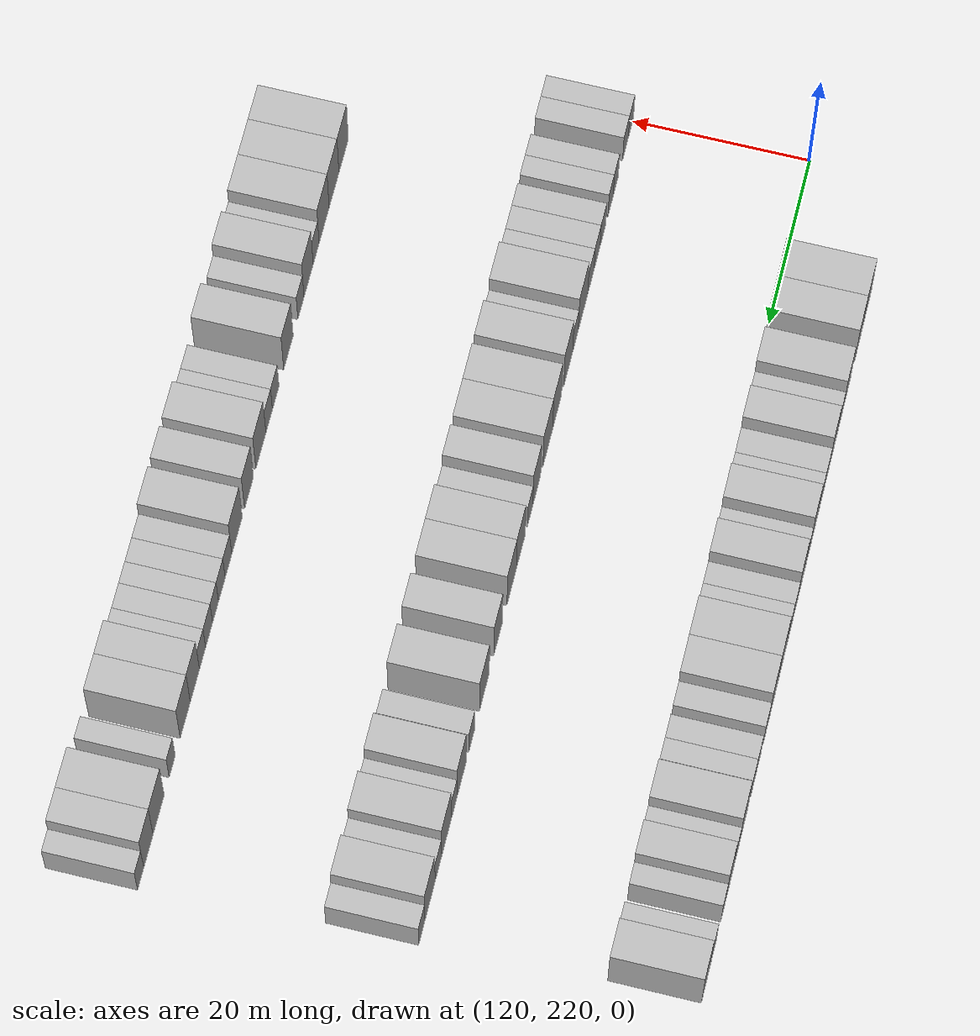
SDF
<sdf version="1.6">
 <world name="default">
  <model name="building_862">
   <static>1</static>
   <pose>115.0000 235.8751 0 0.000000 0.000000 0.000000</pose>
   <link name="link">
    <pose>0 0 4.50 0 0 0</pose>
    <collision name="collision"><geometry><box><size>10.0000 4.4538 9.0000</size></box></geometry></collision>
    <visual name="visual">
     <cast_shadows>0</cast_shadows>
     <geometry><box><size>10.0000 4.4538 9.0000</size></box></geometry>
     <material>
      <script>
       <uri>model://HANNAS_wall/materials/scripts</uri>
       <uri>model://HANNAS_wall/materials/textures</uri>
       <name>vrc/HANNAS_wall</name>
      </script>
     </material>
    </visual>
   </link>
  </model>
  <model name="building_863">
   <static>1</static>
   <pose>115.0000 240.1814 0 0.000000 0.000000 0.000000</pose>
   <link name="link">
    <pose>0 0 4.50 0 0 0</pose>
    <collision name="collision"><geometry><box><size>10.0000 4.1587 9.0000</size></box></geometry></collision>
    <visual name="visual">
     <cast_shadows>0</cast_shadows>
     <geometry><box><size>10.0000 4.1587 9.0000</size></box></geometry>
     <material>
      <script>
       <uri>model://HANNAS_wall/materials/scripts</uri>
       <uri>model://HANNAS_wall/materials/textures</uri>
       <name>vrc/HANNAS_wall</name>
      </script>
     </material>
    </visual>
   </link>
  </model>
  <model name="building_864">
   <static>1</static>
   <pose>115.0000 246.2962 0 0.000000 0.000000 0.000000</pose>
   <link name="link">
    <pose>0 0 4.50 0 0 0</pose>
    <collision name="collision"><geometry><box><size>10.0000 4.0710 9.0000</size></box></geometry></collision>
    <visual name="visual">
     <cast_shadows>0</cast_shadows>
     <geometry><box><size>10.0000 4.0710 9.0000</size></box></geometry>
     <material>
      <script>
       <uri>model://HANNAS_wall/materials/scripts</uri>
       <uri>model://HANNAS_wall/materials/textures</uri>
       <name>vrc/HANNAS_wall</name>
      </script>
     </material>
    </visual>
   </link>
  </model>
  <model name="building_865">
   <static>1</static>
   <pose>115.0000 249.7714 0 0.000000 0.000000 0.000000</pose>
   <link name="link">
    <pose>0 0 3.00 0 0 0</pose>
    <collision name="collision"><geometry><box><size>10.0000 2.8792 6.0000</size></box></geometry></collision>
    <visual name="visual">
     <cast_shadows>0</cast_shadows>
     <geometry><box><size>10.0000 2.8792 6.0000</size></box></geometry>
     <material>
      <script>
       <uri>model://HANNAS_wall/materials/scripts</uri>
       <uri>model://HANNAS_wall/materials/textures</uri>
       <name>vrc/HANNAS_wall</name>
      </script>
     </material>
    </visual>
   </link>
  </model>
  <model name="building_866">
   <static>1</static>
   <pose>115.0000 253.1033 0 0.000000 0.000000 0.000000</pose>
   <link name="link">
    <pose>0 0 4.50 0 0 0</pose>
    <collision name="collision"><geometry><box><size>10.0000 3.7846 9.0000</size></box></geometry></collision>
    <visual name="visual">
     <cast_shadows>0</cast_shadows>
     <geometry><box><size>10.0000 3.7846 9.0000</size></box></geometry>
     <material>
      <script>
       <uri>model://HANNAS_wall/materials/scripts</uri>
       <uri>model://HANNAS_wall/materials/textures</uri>
       <name>vrc/HANNAS_wall</name>
      </script>
     </material>
    </visual>
   </link>
  </model>
  <model name="building_867">
   <static>1</static>
   <pose>115.0000 256.4600 0 0.000000 0.000000 0.000000</pose>
   <link name="link">
    <pose>0 0 3.00 0 0 0</pose>
    <collision name="collision"><geometry><box><size>10.0000 2.9288 6.0000</size></box></geometry></collision>
    <visual name="visual">
     <cast_shadows>0</cast_shadows>
     <geometry><box><size>10.0000 2.9288 6.0000</size></box></geometry>
     <material>
      <script>
       <uri>model://HANNAS_wall/materials/scripts</uri>
       <uri>model://HANNAS_wall/materials/textures</uri>
       <name>vrc/HANNAS_wall</name>
      </script>
     </material>
    </visual>
   </link>
  </model>
  <model name="building_868">
   <static>1</static>
   <pose>115.0000 259.1666 0 0.000000 0.000000 0.000000</pose>
   <link name="link">
    <pose>0 0 3.00 0 0 0</pose>
    <collision name="collision"><geometry><box><size>10.0000 2.4843 6.0000</size></box></geometry></collision>
    <visual name="visual">
     <cast_shadows>0</cast_shadows>
     <geometry><box><size>10.0000 2.4843 6.0000</size></box></geometry>
     <material>
      <script>
       <uri>model://HANNAS_wall/materials/scripts</uri>
       <uri>model://HANNAS_wall/materials/textures</uri>
       <name>vrc/HANNAS_wall</name>
      </script>
     </material>
    </visual>
   </link>
  </model>
  <model name="building_869">
   <static>1</static>
   <pose>115.0000 262.3758 0 0.000000 0.000000 0.000000</pose>
   <link name="link">
    <pose>0 0 4.50 0 0 0</pose>
    <collision name="collision"><geometry><box><size>10.0000 3.9342 9.0000</size></box></geometry></collision>
    <visual name="visual">
     <cast_shadows>0</cast_shadows>
     <geometry><box><size>10.0000 3.9342 9.0000</size></box></geometry>
     <material>
      <script>
       <uri>model://HANNAS_wall/materials/scripts</uri>
       <uri>model://HANNAS_wall/materials/textures</uri>
       <name>vrc/HANNAS_wall</name>
      </script>
     </material>
    </visual>
   </link>
  </model>
  <model name="building_870">
   <static>1</static>
   <pose>115.0000 265.5719 0 0.000000 0.000000 0.000000</pose>
   <link name="link">
    <pose>0 0 3.00 0 0 0</pose>
    <collision name="collision"><geometry><box><size>10.0000 2.4580 6.0000</size></box></geometry></collision>
    <visual name="visual">
     <cast_shadows>0</cast_shadows>
     <geometry><box><size>10.0000 2.4580 6.0000</size></box></geometry>
     <material>
      <script>
       <uri>model://HANNAS_wall/materials/scripts</uri>
       <uri>model://HANNAS_wall/materials/textures</uri>
       <name>vrc/HANNAS_wall</name>
      </script>
     </material>
    </visual>
   </link>
  </model>
  <model name="building_871">
   <static>1</static>
   <pose>115.0000 268.7473 0 0.000000 0.000000 0.000000</pose>
   <link name="link">
    <pose>0 0 4.50 0 0 0</pose>
    <collision name="collision"><geometry><box><size>10.0000 3.8926 9.0000</size></box></geometry></collision>
    <visual name="visual">
     <cast_shadows>0</cast_shadows>
     <geometry><box><size>10.0000 3.8926 9.0000</size></box></geometry>
     <material>
      <script>
       <uri>model://HANNAS_wall/materials/scripts</uri>
       <uri>model://HANNAS_wall/materials/textures</uri>
       <name>vrc/HANNAS_wall</name>
      </script>
     </material>
    </visual>
   </link>
  </model>
  <model name="building_872">
   <static>1</static>
   <pose>115.0000 271.9599 0 0.000000 0.000000 0.000000</pose>
   <link name="link">
    <pose>0 0 3.00 0 0 0</pose>
    <collision name="collision"><geometry><box><size>10.0000 2.5327 6.0000</size></box></geometry></collision>
    <visual name="visual">
     <cast_shadows>0</cast_shadows>
     <geometry><box><size>10.0000 2.5327 6.0000</size></box></geometry>
     <material>
      <script>
       <uri>model://HANNAS_wall/materials/scripts</uri>
       <uri>model://HANNAS_wall/materials/textures</uri>
       <name>vrc/HANNAS_wall</name>
      </script>
     </material>
    </visual>
   </link>
  </model>
  <model name="building_873">
   <static>1</static>
   <pose>115.0000 274.4878 0 0.000000 0.000000 0.000000</pose>
   <link name="link">
    <pose>0 0 3.00 0 0 0</pose>
    <collision name="collision"><geometry><box><size>10.0000 2.5231 6.0000</size></box></geometry></collision>
    <visual name="visual">
     <cast_shadows>0</cast_shadows>
     <geometry><box><size>10.0000 2.5231 6.0000</size></box></geometry>
     <material>
      <script>
       <uri>model://HANNAS_wall/materials/scripts</uri>
       <uri>model://HANNAS_wall/materials/textures</uri>
       <name>vrc/HANNAS_wall</name>
      </script>
     </material>
    </visual>
   </link>
  </model>
  <model name="building_874">
   <static>1</static>
   <pose>115.0000 277.9775 0 0.000000 0.000000 0.000000</pose>
   <link name="link">
    <pose>0 0 4.50 0 0 0</pose>
    <collision name="collision"><geometry><box><size>10.0000 4.4563 9.0000</size></box></geometry></collision>
    <visual name="visual">
     <cast_shadows>0</cast_shadows>
     <geometry><box><size>10.0000 4.4563 9.0000</size></box></geometry>
     <material>
      <script>
       <uri>model://HANNAS_wall/materials/scripts</uri>
       <uri>model://HANNAS_wall/materials/textures</uri>
       <name>vrc/HANNAS_wall</name>
      </script>
     </material>
    </visual>
   </link>
  </model>
  <model name="building_875">
   <static>1</static>
   <pose>115.0000 282.3492 0 0.000000 0.000000 0.000000</pose>
   <link name="link">
    <pose>0 0 4.50 0 0 0</pose>
    <collision name="collision"><geometry><box><size>10.0000 4.2870 9.0000</size></box></geometry></collision>
    <visual name="visual">
     <cast_shadows>0</cast_shadows>
     <geometry><box><size>10.0000 4.2870 9.0000</size></box></geometry>
     <material>
      <script>
       <uri>model://HANNAS_wall/materials/scripts</uri>
       <uri>model://HANNAS_wall/materials/textures</uri>
       <name>vrc/HANNAS_wall</name>
      </script>
     </material>
    </visual>
   </link>
  </model>
  <model name="building_876">
   <static>1</static>
   <pose>115.0000 285.8791 0 0.000000 0.000000 0.000000</pose>
   <link name="link">
    <pose>0 0 3.00 0 0 0</pose>
    <collision name="collision"><geometry><box><size>10.0000 2.7729 6.0000</size></box></geometry></collision>
    <visual name="visual">
     <cast_shadows>0</cast_shadows>
     <geometry><box><size>10.0000 2.7729 6.0000</size></box></geometry>
     <material>
      <script>
       <uri>model://HANNAS_wall/materials/scripts</uri>
       <uri>model://HANNAS_wall/materials/textures</uri>
       <name>vrc/HANNAS_wall</name>
      </script>
     </material>
    </visual>
   </link>
  </model>
  <model name="building_877">
   <static>1</static>
   <pose>115.0000 289.5782 0 0.000000 0.000000 0.000000</pose>
   <link name="link">
    <pose>0 0 3.00 0 0 0</pose>
    <collision name="collision"><geometry><box><size>10.0000 2.6253 6.0000</size></box></geometry></collision>
    <visual name="visual">
     <cast_shadows>0</cast_shadows>
     <geometry><box><size>10.0000 2.6253 6.0000</size></box></geometry>
     <material>
      <script>
       <uri>model://HANNAS_wall/materials/scripts</uri>
       <uri>model://HANNAS_wall/materials/textures</uri>
       <name>vrc/HANNAS_wall</name>
      </script>
     </material>
    </visual>
   </link>
  </model>
  <model name="building_878">
   <static>1</static>
   <pose>115.0000 292.1133 0 0.000000 0.000000 0.000000</pose>
   <link name="link">
    <pose>0 0 3.00 0 0 0</pose>
    <collision name="collision"><geometry><box><size>10.0000 2.4450 6.0000</size></box></geometry></collision>
    <visual name="visual">
     <cast_shadows>0</cast_shadows>
     <geometry><box><size>10.0000 2.4450 6.0000</size></box></geometry>
     <material>
      <script>
       <uri>model://HANNAS_wall/materials/scripts</uri>
       <uri>model://HANNAS_wall/materials/textures</uri>
       <name>vrc/HANNAS_wall</name>
      </script>
     </material>
    </visual>
   </link>
  </model>
  <model name="building_879">
   <static>1</static>
   <pose>115.0000 296.4549 0 0.000000 0.000000 0.000000</pose>
   <link name="link">
    <pose>0 0 4.50 0 0 0</pose>
    <collision name="collision"><geometry><box><size>10.0000 4.2381 9.0000</size></box></geometry></collision>
    <visual name="visual">
     <cast_shadows>0</cast_shadows>
     <geometry><box><size>10.0000 4.2381 9.0000</size></box></geometry>
     <material>
      <script>
       <uri>model://HANNAS_wall/materials/scripts</uri>
       <uri>model://HANNAS_wall/materials/textures</uri>
       <name>vrc/HANNAS_wall</name>
      </script>
     </material>
    </visual>
   </link>
  </model>
  <model name="building_880">
   <static>1</static>
   <pose>115.0000 299.8351 0 0.000000 0.000000 0.000000</pose>
   <link name="link">
    <pose>0 0 3.00 0 0 0</pose>
    <collision name="collision"><geometry><box><size>10.0000 2.5222 6.0000</size></box></geometry></collision>
    <visual name="visual">
     <cast_shadows>0</cast_shadows>
     <geometry><box><size>10.0000 2.5222 6.0000</size></box></geometry>
     <material>
      <script>
       <uri>model://HANNAS_wall/materials/scripts</uri>
       <uri>model://HANNAS_wall/materials/textures</uri>
       <name>vrc/HANNAS_wall</name>
      </script>
     </material>
    </visual>
   </link>
  </model>
  <model name="building_881">
   <static>1</static>
   <pose>115.0000 302.9856 0 0.000000 0.000000 0.000000</pose>
   <link name="link">
    <pose>0 0 4.50 0 0 0</pose>
    <collision name="collision"><geometry><box><size>10.0000 3.7789 9.0000</size></box></geometry></collision>
    <visual name="visual">
     <cast_shadows>0</cast_shadows>
     <geometry><box><size>10.0000 3.7789 9.0000</size></box></geometry>
     <material>
      <script>
       <uri>model://HANNAS_wall/materials/scripts</uri>
       <uri>model://HANNAS_wall/materials/textures</uri>
       <name>vrc/HANNAS_wall</name>
      </script>
     </material>
    </visual>
   </link>
  </model>
  <model name="building_882">
   <static>1</static>
   <pose>115.0000 306.0848 0 0.000000 0.000000 0.000000</pose>
   <link name="link">
    <pose>0 0 3.00 0 0 0</pose>
    <collision name="collision"><geometry><box><size>10.0000 2.4195 6.0000</size></box></geometry></collision>
    <visual name="visual">
     <cast_shadows>0</cast_shadows>
     <geometry><box><size>10.0000 2.4195 6.0000</size></box></geometry>
     <material>
      <script>
       <uri>model://HANNAS_wall/materials/scripts</uri>
       <uri>model://HANNAS_wall/materials/textures</uri>
       <name>vrc/HANNAS_wall</name>
      </script>
     </material>
    </visual>
   </link>
  </model>
  <model name="building_883">
   <static>1</static>
   <pose>115.0000 310.6423 0 0.000000 0.000000 0.000000</pose>
   <link name="link">
    <pose>0 0 3.00 0 0 0</pose>
    <collision name="collision"><geometry><box><size>10.0000 2.6955 6.0000</size></box></geometry></collision>
    <visual name="visual">
     <cast_shadows>0</cast_shadows>
     <geometry><box><size>10.0000 2.6955 6.0000</size></box></geometry>
     <material>
      <script>
       <uri>model://HANNAS_wall/materials/scripts</uri>
       <uri>model://HANNAS_wall/materials/textures</uri>
       <name>vrc/HANNAS_wall</name>
      </script>
     </material>
    </visual>
   </link>
  </model>
  <model name="building_884">
   <static>1</static>
   <pose>115.0000 314.1331 0 0.000000 0.000000 0.000000</pose>
   <link name="link">
    <pose>0 0 4.50 0 0 0</pose>
    <collision name="collision"><geometry><box><size>10.0000 4.2861 9.0000</size></box></geometry></collision>
    <visual name="visual">
     <cast_shadows>0</cast_shadows>
     <geometry><box><size>10.0000 4.2861 9.0000</size></box></geometry>
     <material>
      <script>
       <uri>model://HANNAS_wall/materials/scripts</uri>
       <uri>model://HANNAS_wall/materials/textures</uri>
       <name>vrc/HANNAS_wall</name>
      </script>
     </material>
    </visual>
   </link>
  </model>
  <model name="building_1085">
   <static>1</static>
   <pose>145.0000 220.9157 0 0.000000 0.000000 0.000000</pose>
   <link name="link">
    <pose>0 0 3.00 0 0 0</pose>
    <collision name="collision"><geometry><box><size>10.0000 2.6002 6.0000</size></box></geometry></collision>
    <visual name="visual">
     <cast_shadows>0</cast_shadows>
     <geometry><box><size>10.0000 2.6002 6.0000</size></box></geometry>
     <material>
      <script>
       <uri>model://HANNAS_wall/materials/scripts</uri>
       <uri>model://HANNAS_wall/materials/textures</uri>
       <name>vrc/HANNAS_wall</name>
      </script>
     </material>
    </visual>
   </link>
  </model>
  <model name="building_1086">
   <static>1</static>
   <pose>145.0000 223.5681 0 0.000000 0.000000 0.000000</pose>
   <link name="link">
    <pose>0 0 3.00 0 0 0</pose>
    <collision name="collision"><geometry><box><size>10.0000 2.7048 6.0000</size></box></geometry></collision>
    <visual name="visual">
     <cast_shadows>0</cast_shadows>
     <geometry><box><size>10.0000 2.7048 6.0000</size></box></geometry>
     <material>
      <script>
       <uri>model://HANNAS_wall/materials/scripts</uri>
       <uri>model://HANNAS_wall/materials/textures</uri>
       <name>vrc/HANNAS_wall</name>
      </script>
     </material>
    </visual>
   </link>
  </model>
  <model name="building_1087">
   <static>1</static>
   <pose>145.0000 228.1984 0 0.000000 0.000000 0.000000</pose>
   <link name="link">
    <pose>0 0 3.00 0 0 0</pose>
    <collision name="collision"><geometry><box><size>10.0000 2.5559 6.0000</size></box></geometry></collision>
    <visual name="visual">
     <cast_shadows>0</cast_shadows>
     <geometry><box><size>10.0000 2.5559 6.0000</size></box></geometry>
     <material>
      <script>
       <uri>model://HANNAS_wall/materials/scripts</uri>
       <uri>model://HANNAS_wall/materials/textures</uri>
       <name>vrc/HANNAS_wall</name>
      </script>
     </material>
    </visual>
   </link>
  </model>
  <model name="building_1088">
   <static>1</static>
   <pose>145.0000 230.7215 0 0.000000 0.000000 0.000000</pose>
   <link name="link">
    <pose>0 0 3.00 0 0 0</pose>
    <collision name="collision"><geometry><box><size>10.0000 2.4903 6.0000</size></box></geometry></collision>
    <visual name="visual">
     <cast_shadows>0</cast_shadows>
     <geometry><box><size>10.0000 2.4903 6.0000</size></box></geometry>
     <material>
      <script>
       <uri>model://HANNAS_wall/materials/scripts</uri>
       <uri>model://HANNAS_wall/materials/textures</uri>
       <name>vrc/HANNAS_wall</name>
      </script>
     </material>
    </visual>
   </link>
  </model>
  <model name="building_1089">
   <static>1</static>
   <pose>145.0000 234.3132 0 0.000000 0.000000 0.000000</pose>
   <link name="link">
    <pose>0 0 3.00 0 0 0</pose>
    <collision name="collision"><geometry><box><size>10.0000 2.6929 6.0000</size></box></geometry></collision>
    <visual name="visual">
     <cast_shadows>0</cast_shadows>
     <geometry><box><size>10.0000 2.6929 6.0000</size></box></geometry>
     <material>
      <script>
       <uri>model://HANNAS_wall/materials/scripts</uri>
       <uri>model://HANNAS_wall/materials/textures</uri>
       <name>vrc/HANNAS_wall</name>
      </script>
     </material>
    </visual>
   </link>
  </model>
  <model name="building_1090">
   <static>1</static>
   <pose>145.0000 237.0850 0 0.000000 0.000000 0.000000</pose>
   <link name="link">
    <pose>0 0 3.00 0 0 0</pose>
    <collision name="collision"><geometry><box><size>10.0000 2.8508 6.0000</size></box></geometry></collision>
    <visual name="visual">
     <cast_shadows>0</cast_shadows>
     <geometry><box><size>10.0000 2.8508 6.0000</size></box></geometry>
     <material>
      <script>
       <uri>model://HANNAS_wall/materials/scripts</uri>
       <uri>model://HANNAS_wall/materials/textures</uri>
       <name>vrc/HANNAS_wall</name>
      </script>
     </material>
    </visual>
   </link>
  </model>
  <model name="building_1091">
   <static>1</static>
   <pose>145.0000 239.9991 0 0.000000 0.000000 0.000000</pose>
   <link name="link">
    <pose>0 0 3.00 0 0 0</pose>
    <collision name="collision"><geometry><box><size>10.0000 2.9773 6.0000</size></box></geometry></collision>
    <visual name="visual">
     <cast_shadows>0</cast_shadows>
     <geometry><box><size>10.0000 2.9773 6.0000</size></box></geometry>
     <material>
      <script>
       <uri>model://HANNAS_wall/materials/scripts</uri>
       <uri>model://HANNAS_wall/materials/textures</uri>
       <name>vrc/HANNAS_wall</name>
      </script>
     </material>
    </visual>
   </link>
  </model>
  <model name="building_1092">
   <static>1</static>
   <pose>145.0000 243.7356 0 0.000000 0.000000 0.000000</pose>
   <link name="link">
    <pose>0 0 4.50 0 0 0</pose>
    <collision name="collision"><geometry><box><size>10.0000 4.4958 9.0000</size></box></geometry></collision>
    <visual name="visual">
     <cast_shadows>0</cast_shadows>
     <geometry><box><size>10.0000 4.4958 9.0000</size></box></geometry>
     <material>
      <script>
       <uri>model://HANNAS_wall/materials/scripts</uri>
       <uri>model://HANNAS_wall/materials/textures</uri>
       <name>vrc/HANNAS_wall</name>
      </script>
     </material>
    </visual>
   </link>
  </model>
  <model name="building_1093">
   <static>1</static>
   <pose>145.0000 247.2667 0 0.000000 0.000000 0.000000</pose>
   <link name="link">
    <pose>0 0 3.00 0 0 0</pose>
    <collision name="collision"><geometry><box><size>10.0000 2.5664 6.0000</size></box></geometry></collision>
    <visual name="visual">
     <cast_shadows>0</cast_shadows>
     <geometry><box><size>10.0000 2.5664 6.0000</size></box></geometry>
     <material>
      <script>
       <uri>model://HANNAS_wall/materials/scripts</uri>
       <uri>model://HANNAS_wall/materials/textures</uri>
       <name>vrc/HANNAS_wall</name>
      </script>
     </material>
    </visual>
   </link>
  </model>
  <model name="building_1094">
   <static>1</static>
   <pose>145.0000 250.6138 0 0.000000 0.000000 0.000000</pose>
   <link name="link">
    <pose>0 0 4.50 0 0 0</pose>
    <collision name="collision"><geometry><box><size>10.0000 4.1277 9.0000</size></box></geometry></collision>
    <visual name="visual">
     <cast_shadows>0</cast_shadows>
     <geometry><box><size>10.0000 4.1277 9.0000</size></box></geometry>
     <material>
      <script>
       <uri>model://HANNAS_wall/materials/scripts</uri>
       <uri>model://HANNAS_wall/materials/textures</uri>
       <name>vrc/HANNAS_wall</name>
      </script>
     </material>
    </visual>
   </link>
  </model>
  <model name="building_1095">
   <static>1</static>
   <pose>145.0000 255.7609 0 0.000000 0.000000 0.000000</pose>
   <link name="link">
    <pose>0 0 4.50 0 0 0</pose>
    <collision name="collision"><geometry><box><size>10.0000 4.1666 9.0000</size></box></geometry></collision>
    <visual name="visual">
     <cast_shadows>0</cast_shadows>
     <geometry><box><size>10.0000 4.1666 9.0000</size></box></geometry>
     <material>
      <script>
       <uri>model://HANNAS_wall/materials/scripts</uri>
       <uri>model://HANNAS_wall/materials/textures</uri>
       <name>vrc/HANNAS_wall</name>
      </script>
     </material>
    </visual>
   </link>
  </model>
  <model name="building_1096">
   <static>1</static>
   <pose>145.0000 260.0706 0 0.000000 0.000000 0.000000</pose>
   <link name="link">
    <pose>0 0 4.50 0 0 0</pose>
    <collision name="collision"><geometry><box><size>10.0000 4.4527 9.0000</size></box></geometry></collision>
    <visual name="visual">
     <cast_shadows>0</cast_shadows>
     <geometry><box><size>10.0000 4.4527 9.0000</size></box></geometry>
     <material>
      <script>
       <uri>model://HANNAS_wall/materials/scripts</uri>
       <uri>model://HANNAS_wall/materials/textures</uri>
       <name>vrc/HANNAS_wall</name>
      </script>
     </material>
    </visual>
   </link>
  </model>
  <model name="building_1097">
   <static>1</static>
   <pose>145.0000 265.1052 0 0.000000 0.000000 0.000000</pose>
   <link name="link">
    <pose>0 0 4.50 0 0 0</pose>
    <collision name="collision"><geometry><box><size>10.0000 3.6166 9.0000</size></box></geometry></collision>
    <visual name="visual">
     <cast_shadows>0</cast_shadows>
     <geometry><box><size>10.0000 3.6166 9.0000</size></box></geometry>
     <material>
      <script>
       <uri>model://HANNAS_wall/materials/scripts</uri>
       <uri>model://HANNAS_wall/materials/textures</uri>
       <name>vrc/HANNAS_wall</name>
      </script>
     </material>
    </visual>
   </link>
  </model>
  <model name="building_1098">
   <static>1</static>
   <pose>145.0000 268.1283 0 0.000000 0.000000 0.000000</pose>
   <link name="link">
    <pose>0 0 3.00 0 0 0</pose>
    <collision name="collision"><geometry><box><size>10.0000 2.4296 6.0000</size></box></geometry></collision>
    <visual name="visual">
     <cast_shadows>0</cast_shadows>
     <geometry><box><size>10.0000 2.4296 6.0000</size></box></geometry>
     <material>
      <script>
       <uri>model://HANNAS_wall/materials/scripts</uri>
       <uri>model://HANNAS_wall/materials/textures</uri>
       <name>vrc/HANNAS_wall</name>
      </script>
     </material>
    </visual>
   </link>
  </model>
  <model name="building_1099">
   <static>1</static>
   <pose>145.0000 272.3154 0 0.000000 0.000000 0.000000</pose>
   <link name="link">
    <pose>0 0 4.50 0 0 0</pose>
    <collision name="collision"><geometry><box><size>10.0000 3.9445 9.0000</size></box></geometry></collision>
    <visual name="visual">
     <cast_shadows>0</cast_shadows>
     <geometry><box><size>10.0000 3.9445 9.0000</size></box></geometry>
     <material>
      <script>
       <uri>model://HANNAS_wall/materials/scripts</uri>
       <uri>model://HANNAS_wall/materials/textures</uri>
       <name>vrc/HANNAS_wall</name>
      </script>
     </material>
    </visual>
   </link>
  </model>
  <model name="building_1100">
   <static>1</static>
   <pose>145.0000 276.4461 0 0.000000 0.000000 0.000000</pose>
   <link name="link">
    <pose>0 0 4.50 0 0 0</pose>
    <collision name="collision"><geometry><box><size>10.0000 4.3168 9.0000</size></box></geometry></collision>
    <visual name="visual">
     <cast_shadows>0</cast_shadows>
     <geometry><box><size>10.0000 4.3168 9.0000</size></box></geometry>
     <material>
      <script>
       <uri>model://HANNAS_wall/materials/scripts</uri>
       <uri>model://HANNAS_wall/materials/textures</uri>
       <name>vrc/HANNAS_wall</name>
      </script>
     </material>
    </visual>
   </link>
  </model>
  <model name="building_1101">
   <static>1</static>
   <pose>145.0000 282.5282 0 0.000000 0.000000 0.000000</pose>
   <link name="link">
    <pose>0 0 4.50 0 0 0</pose>
    <collision name="collision"><geometry><box><size>10.0000 3.8476 9.0000</size></box></geometry></collision>
    <visual name="visual">
     <cast_shadows>0</cast_shadows>
     <geometry><box><size>10.0000 3.8476 9.0000</size></box></geometry>
     <material>
      <script>
       <uri>model://HANNAS_wall/materials/scripts</uri>
       <uri>model://HANNAS_wall/materials/textures</uri>
       <name>vrc/HANNAS_wall</name>
      </script>
     </material>
    </visual>
   </link>
  </model>
  <model name="building_1102">
   <static>1</static>
   <pose>145.0000 288.6467 0 0.000000 0.000000 0.000000</pose>
   <link name="link">
    <pose>0 0 4.50 0 0 0</pose>
    <collision name="collision"><geometry><box><size>10.0000 4.3894 9.0000</size></box></geometry></collision>
    <visual name="visual">
     <cast_shadows>0</cast_shadows>
     <geometry><box><size>10.0000 4.3894 9.0000</size></box></geometry>
     <material>
      <script>
       <uri>model://HANNAS_wall/materials/scripts</uri>
       <uri>model://HANNAS_wall/materials/textures</uri>
       <name>vrc/HANNAS_wall</name>
      </script>
     </material>
    </visual>
   </link>
  </model>
  <model name="building_1103">
   <static>1</static>
   <pose>145.0000 294.2118 0 0.000000 0.000000 0.000000</pose>
   <link name="link">
    <pose>0 0 3.00 0 0 0</pose>
    <collision name="collision"><geometry><box><size>10.0000 2.7407 6.0000</size></box></geometry></collision>
    <visual name="visual">
     <cast_shadows>0</cast_shadows>
     <geometry><box><size>10.0000 2.7407 6.0000</size></box></geometry>
     <material>
      <script>
       <uri>model://HANNAS_wall/materials/scripts</uri>
       <uri>model://HANNAS_wall/materials/textures</uri>
       <name>vrc/HANNAS_wall</name>
      </script>
     </material>
    </visual>
   </link>
  </model>
  <model name="building_1104">
   <static>1</static>
   <pose>145.0000 298.6215 0 0.000000 0.000000 0.000000</pose>
   <link name="link">
    <pose>0 0 4.50 0 0 0</pose>
    <collision name="collision"><geometry><box><size>10.0000 4.0788 9.0000</size></box></geometry></collision>
    <visual name="visual">
     <cast_shadows>0</cast_shadows>
     <geometry><box><size>10.0000 4.0788 9.0000</size></box></geometry>
     <material>
      <script>
       <uri>model://HANNAS_wall/materials/scripts</uri>
       <uri>model://HANNAS_wall/materials/textures</uri>
       <name>vrc/HANNAS_wall</name>
      </script>
     </material>
    </visual>
   </link>
  </model>
  <model name="building_1105">
   <static>1</static>
   <pose>145.0000 301.8920 0 0.000000 0.000000 0.000000</pose>
   <link name="link">
    <pose>0 0 3.00 0 0 0</pose>
    <collision name="collision"><geometry><box><size>10.0000 2.4623 6.0000</size></box></geometry></collision>
    <visual name="visual">
     <cast_shadows>0</cast_shadows>
     <geometry><box><size>10.0000 2.4623 6.0000</size></box></geometry>
     <material>
      <script>
       <uri>model://HANNAS_wall/materials/scripts</uri>
       <uri>model://HANNAS_wall/materials/textures</uri>
       <name>vrc/HANNAS_wall</name>
      </script>
     </material>
    </visual>
   </link>
  </model>
  <model name="building_1106">
   <static>1</static>
   <pose>145.0000 305.2558 0 0.000000 0.000000 0.000000</pose>
   <link name="link">
    <pose>0 0 4.50 0 0 0</pose>
    <collision name="collision"><geometry><box><size>10.0000 4.2651 9.0000</size></box></geometry></collision>
    <visual name="visual">
     <cast_shadows>0</cast_shadows>
     <geometry><box><size>10.0000 4.2651 9.0000</size></box></geometry>
     <material>
      <script>
       <uri>model://HANNAS_wall/materials/scripts</uri>
       <uri>model://HANNAS_wall/materials/textures</uri>
       <name>vrc/HANNAS_wall</name>
      </script>
     </material>
    </visual>
   </link>
  </model>
  <model name="building_1107">
   <static>1</static>
   <pose>145.0000 308.8092 0 0.000000 0.000000 0.000000</pose>
   <link name="link">
    <pose>0 0 3.00 0 0 0</pose>
    <collision name="collision"><geometry><box><size>10.0000 2.8418 6.0000</size></box></geometry></collision>
    <visual name="visual">
     <cast_shadows>0</cast_shadows>
     <geometry><box><size>10.0000 2.8418 6.0000</size></box></geometry>
     <material>
      <script>
       <uri>model://HANNAS_wall/materials/scripts</uri>
       <uri>model://HANNAS_wall/materials/textures</uri>
       <name>vrc/HANNAS_wall</name>
      </script>
     </material>
    </visual>
   </link>
  </model>
  <model name="building_1108">
   <static>1</static>
   <pose>145.0000 312.4275 0 0.000000 0.000000 0.000000</pose>
   <link name="link">
    <pose>0 0 4.50 0 0 0</pose>
    <collision name="collision"><geometry><box><size>10.0000 4.3948 9.0000</size></box></geometry></collision>
    <visual name="visual">
     <cast_shadows>0</cast_shadows>
     <geometry><box><size>10.0000 4.3948 9.0000</size></box></geometry>
     <material>
      <script>
       <uri>model://HANNAS_wall/materials/scripts</uri>
       <uri>model://HANNAS_wall/materials/textures</uri>
       <name>vrc/HANNAS_wall</name>
      </script>
     </material>
    </visual>
   </link>
  </model>
  <model name="building_1109">
   <static>1</static>
   <pose>145.0000 315.9634 0 0.000000 0.000000 0.000000</pose>
   <link name="link">
    <pose>0 0 3.00 0 0 0</pose>
    <collision name="collision"><geometry><box><size>10.0000 2.6769 6.0000</size></box></geometry></collision>
    <visual name="visual">
     <cast_shadows>0</cast_shadows>
     <geometry><box><size>10.0000 2.6769 6.0000</size></box></geometry>
     <material>
      <script>
       <uri>model://HANNAS_wall/materials/scripts</uri>
       <uri>model://HANNAS_wall/materials/textures</uri>
       <name>vrc/HANNAS_wall</name>
      </script>
     </material>
    </visual>
   </link>
  </model>
  <model name="building_1302">
   <static>1</static>
   <pose>175.0000 231.8185 0 0.000000 0.000000 0.000000</pose>
   <link name="link">
    <pose>0 0 4.50 0 0 0</pose>
    <collision name="collision"><geometry><box><size>10.0000 4.2025 9.0000</size></box></geometry></collision>
    <visual name="visual">
     <cast_shadows>0</cast_shadows>
     <geometry><box><size>10.0000 4.2025 9.0000</size></box></geometry>
     <material>
      <script>
       <uri>model://HANNAS_wall/materials/scripts</uri>
       <uri>model://HANNAS_wall/materials/textures</uri>
       <name>vrc/HANNAS_wall</name>
      </script>
     </material>
    </visual>
   </link>
  </model>
  <model name="building_1303">
   <static>1</static>
   <pose>175.0000 236.0840 0 0.000000 0.000000 0.000000</pose>
   <link name="link">
    <pose>0 0 4.50 0 0 0</pose>
    <collision name="collision"><geometry><box><size>10.0000 4.3284 9.0000</size></box></geometry></collision>
    <visual name="visual">
     <cast_shadows>0</cast_shadows>
     <geometry><box><size>10.0000 4.3284 9.0000</size></box></geometry>
     <material>
      <script>
       <uri>model://HANNAS_wall/materials/scripts</uri>
       <uri>model://HANNAS_wall/materials/textures</uri>
       <name>vrc/HANNAS_wall</name>
      </script>
     </material>
    </visual>
   </link>
  </model>
  <model name="building_1304">
   <static>1</static>
   <pose>175.0000 240.4550 0 0.000000 0.000000 0.000000</pose>
   <link name="link">
    <pose>0 0 4.50 0 0 0</pose>
    <collision name="collision"><geometry><box><size>10.0000 4.4137 9.0000</size></box></geometry></collision>
    <visual name="visual">
     <cast_shadows>0</cast_shadows>
     <geometry><box><size>10.0000 4.4137 9.0000</size></box></geometry>
     <material>
      <script>
       <uri>model://HANNAS_wall/materials/scripts</uri>
       <uri>model://HANNAS_wall/materials/textures</uri>
       <name>vrc/HANNAS_wall</name>
      </script>
     </material>
    </visual>
   </link>
  </model>
  <model name="building_1305">
   <static>1</static>
   <pose>175.0000 243.9558 0 0.000000 0.000000 0.000000</pose>
   <link name="link">
    <pose>0 0 3.00 0 0 0</pose>
    <collision name="collision"><geometry><box><size>10.0000 2.5880 6.0000</size></box></geometry></collision>
    <visual name="visual">
     <cast_shadows>0</cast_shadows>
     <geometry><box><size>10.0000 2.5880 6.0000</size></box></geometry>
     <material>
      <script>
       <uri>model://HANNAS_wall/materials/scripts</uri>
       <uri>model://HANNAS_wall/materials/textures</uri>
       <name>vrc/HANNAS_wall</name>
      </script>
     </material>
    </visual>
   </link>
  </model>
  <model name="building_1306">
   <static>1</static>
   <pose>175.0000 247.2488 0 0.000000 0.000000 0.000000</pose>
   <link name="link">
    <pose>0 0 4.50 0 0 0</pose>
    <collision name="collision"><geometry><box><size>10.0000 3.9979 9.0000</size></box></geometry></collision>
    <visual name="visual">
     <cast_shadows>0</cast_shadows>
     <geometry><box><size>10.0000 3.9979 9.0000</size></box></geometry>
     <material>
      <script>
       <uri>model://HANNAS_wall/materials/scripts</uri>
       <uri>model://HANNAS_wall/materials/textures</uri>
       <name>vrc/HANNAS_wall</name>
      </script>
     </material>
    </visual>
   </link>
  </model>
  <model name="building_1307">
   <static>1</static>
   <pose>175.0000 250.5850 0 0.000000 0.000000 0.000000</pose>
   <link name="link">
    <pose>0 0 3.00 0 0 0</pose>
    <collision name="collision"><geometry><box><size>10.0000 2.6745 6.0000</size></box></geometry></collision>
    <visual name="visual">
     <cast_shadows>0</cast_shadows>
     <geometry><box><size>10.0000 2.6745 6.0000</size></box></geometry>
     <material>
      <script>
       <uri>model://HANNAS_wall/materials/scripts</uri>
       <uri>model://HANNAS_wall/materials/textures</uri>
       <name>vrc/HANNAS_wall</name>
      </script>
     </material>
    </visual>
   </link>
  </model>
  <model name="building_1308">
   <static>1</static>
   <pose>175.0000 255.9689 0 0.000000 0.000000 0.000000</pose>
   <link name="link">
    <pose>0 0 4.50 0 0 0</pose>
    <collision name="collision"><geometry><box><size>10.0000 4.0932 9.0000</size></box></geometry></collision>
    <visual name="visual">
     <cast_shadows>0</cast_shadows>
     <geometry><box><size>10.0000 4.0932 9.0000</size></box></geometry>
     <material>
      <script>
       <uri>model://HANNAS_wall/materials/scripts</uri>
       <uri>model://HANNAS_wall/materials/textures</uri>
       <name>vrc/HANNAS_wall</name>
      </script>
     </material>
    </visual>
   </link>
  </model>
  <model name="building_1309">
   <static>1</static>
   <pose>175.0000 261.4339 0 0.000000 0.000000 0.000000</pose>
   <link name="link">
    <pose>0 0 3.00 0 0 0</pose>
    <collision name="collision"><geometry><box><size>10.0000 2.8369 6.0000</size></box></geometry></collision>
    <visual name="visual">
     <cast_shadows>0</cast_shadows>
     <geometry><box><size>10.0000 2.8369 6.0000</size></box></geometry>
     <material>
      <script>
       <uri>model://HANNAS_wall/materials/scripts</uri>
       <uri>model://HANNAS_wall/materials/textures</uri>
       <name>vrc/HANNAS_wall</name>
      </script>
     </material>
    </visual>
   </link>
  </model>
  <model name="building_1310">
   <static>1</static>
   <pose>175.0000 264.2434 0 0.000000 0.000000 0.000000</pose>
   <link name="link">
    <pose>0 0 3.00 0 0 0</pose>
    <collision name="collision"><geometry><box><size>10.0000 2.7820 6.0000</size></box></geometry></collision>
    <visual name="visual">
     <cast_shadows>0</cast_shadows>
     <geometry><box><size>10.0000 2.7820 6.0000</size></box></geometry>
     <material>
      <script>
       <uri>model://HANNAS_wall/materials/scripts</uri>
       <uri>model://HANNAS_wall/materials/textures</uri>
       <name>vrc/HANNAS_wall</name>
      </script>
     </material>
    </visual>
   </link>
  </model>
  <model name="building_1311">
   <static>1</static>
   <pose>175.0000 267.7769 0 0.000000 0.000000 0.000000</pose>
   <link name="link">
    <pose>0 0 4.50 0 0 0</pose>
    <collision name="collision"><geometry><box><size>10.0000 4.2851 9.0000</size></box></geometry></collision>
    <visual name="visual">
     <cast_shadows>0</cast_shadows>
     <geometry><box><size>10.0000 4.2851 9.0000</size></box></geometry>
     <material>
      <script>
       <uri>model://HANNAS_wall/materials/scripts</uri>
       <uri>model://HANNAS_wall/materials/textures</uri>
       <name>vrc/HANNAS_wall</name>
      </script>
     </material>
    </visual>
   </link>
  </model>
  <model name="building_1312">
   <static>1</static>
   <pose>175.0000 272.7875 0 0.000000 0.000000 0.000000</pose>
   <link name="link">
    <pose>0 0 4.50 0 0 0</pose>
    <collision name="collision"><geometry><box><size>10.0000 3.7359 9.0000</size></box></geometry></collision>
    <visual name="visual">
     <cast_shadows>0</cast_shadows>
     <geometry><box><size>10.0000 3.7359 9.0000</size></box></geometry>
     <material>
      <script>
       <uri>model://HANNAS_wall/materials/scripts</uri>
       <uri>model://HANNAS_wall/materials/textures</uri>
       <name>vrc/HANNAS_wall</name>
      </script>
     </material>
    </visual>
   </link>
  </model>
  <model name="building_1313">
   <static>1</static>
   <pose>175.0000 277.8537 0 0.000000 0.000000 0.000000</pose>
   <link name="link">
    <pose>0 0 4.50 0 0 0</pose>
    <collision name="collision"><geometry><box><size>10.0000 4.3966 9.0000</size></box></geometry></collision>
    <visual name="visual">
     <cast_shadows>0</cast_shadows>
     <geometry><box><size>10.0000 4.3966 9.0000</size></box></geometry>
     <material>
      <script>
       <uri>model://HANNAS_wall/materials/scripts</uri>
       <uri>model://HANNAS_wall/materials/textures</uri>
       <name>vrc/HANNAS_wall</name>
      </script>
     </material>
    </visual>
   </link>
  </model>
  <model name="building_1314">
   <static>1</static>
   <pose>175.0000 281.4303 0 0.000000 0.000000 0.000000</pose>
   <link name="link">
    <pose>0 0 3.00 0 0 0</pose>
    <collision name="collision"><geometry><box><size>10.0000 2.7565 6.0000</size></box></geometry></collision>
    <visual name="visual">
     <cast_shadows>0</cast_shadows>
     <geometry><box><size>10.0000 2.7565 6.0000</size></box></geometry>
     <material>
      <script>
       <uri>model://HANNAS_wall/materials/scripts</uri>
       <uri>model://HANNAS_wall/materials/textures</uri>
       <name>vrc/HANNAS_wall</name>
      </script>
     </material>
    </visual>
   </link>
  </model>
  <model name="building_1315">
   <static>1</static>
   <pose>175.0000 284.1954 0 0.000000 0.000000 0.000000</pose>
   <link name="link">
    <pose>0 0 3.00 0 0 0</pose>
    <collision name="collision"><geometry><box><size>10.0000 2.7737 6.0000</size></box></geometry></collision>
    <visual name="visual">
     <cast_shadows>0</cast_shadows>
     <geometry><box><size>10.0000 2.7737 6.0000</size></box></geometry>
     <material>
      <script>
       <uri>model://HANNAS_wall/materials/scripts</uri>
       <uri>model://HANNAS_wall/materials/textures</uri>
       <name>vrc/HANNAS_wall</name>
      </script>
     </material>
    </visual>
   </link>
  </model>
  <model name="building_1316">
   <static>1</static>
   <pose>175.0000 286.8257 0 0.000000 0.000000 0.000000</pose>
   <link name="link">
    <pose>0 0 3.00 0 0 0</pose>
    <collision name="collision"><geometry><box><size>10.0000 2.4871 6.0000</size></box></geometry></collision>
    <visual name="visual">
     <cast_shadows>0</cast_shadows>
     <geometry><box><size>10.0000 2.4871 6.0000</size></box></geometry>
     <material>
      <script>
       <uri>model://HANNAS_wall/materials/scripts</uri>
       <uri>model://HANNAS_wall/materials/textures</uri>
       <name>vrc/HANNAS_wall</name>
      </script>
     </material>
    </visual>
   </link>
  </model>
  <model name="building_1317">
   <static>1</static>
   <pose>175.0000 289.5062 0 0.000000 0.000000 0.000000</pose>
   <link name="link">
    <pose>0 0 3.00 0 0 0</pose>
    <collision name="collision"><geometry><box><size>10.0000 2.8740 6.0000</size></box></geometry></collision>
    <visual name="visual">
     <cast_shadows>0</cast_shadows>
     <geometry><box><size>10.0000 2.8740 6.0000</size></box></geometry>
     <material>
      <script>
       <uri>model://HANNAS_wall/materials/scripts</uri>
       <uri>model://HANNAS_wall/materials/textures</uri>
       <name>vrc/HANNAS_wall</name>
      </script>
     </material>
    </visual>
   </link>
  </model>
  <model name="building_1318">
   <static>1</static>
   <pose>175.0000 292.2106 0 0.000000 0.000000 0.000000</pose>
   <link name="link">
    <pose>0 0 3.00 0 0 0</pose>
    <collision name="collision"><geometry><box><size>10.0000 2.5349 6.0000</size></box></geometry></collision>
    <visual name="visual">
     <cast_shadows>0</cast_shadows>
     <geometry><box><size>10.0000 2.5349 6.0000</size></box></geometry>
     <material>
      <script>
       <uri>model://HANNAS_wall/materials/scripts</uri>
       <uri>model://HANNAS_wall/materials/textures</uri>
       <name>vrc/HANNAS_wall</name>
      </script>
     </material>
    </visual>
   </link>
  </model>
  <model name="building_1319">
   <static>1</static>
   <pose>175.0000 295.3677 0 0.000000 0.000000 0.000000</pose>
   <link name="link">
    <pose>0 0 4.50 0 0 0</pose>
    <collision name="collision"><geometry><box><size>10.0000 3.7792 9.0000</size></box></geometry></collision>
    <visual name="visual">
     <cast_shadows>0</cast_shadows>
     <geometry><box><size>10.0000 3.7792 9.0000</size></box></geometry>
     <material>
      <script>
       <uri>model://HANNAS_wall/materials/scripts</uri>
       <uri>model://HANNAS_wall/materials/textures</uri>
       <name>vrc/HANNAS_wall</name>
      </script>
     </material>
    </visual>
   </link>
  </model>
  <model name="building_1320">
   <static>1</static>
   <pose>175.0000 299.3153 0 0.000000 0.000000 0.000000</pose>
   <link name="link">
    <pose>0 0 4.50 0 0 0</pose>
    <collision name="collision"><geometry><box><size>10.0000 4.1161 9.0000</size></box></geometry></collision>
    <visual name="visual">
     <cast_shadows>0</cast_shadows>
     <geometry><box><size>10.0000 4.1161 9.0000</size></box></geometry>
     <material>
      <script>
       <uri>model://HANNAS_wall/materials/scripts</uri>
       <uri>model://HANNAS_wall/materials/textures</uri>
       <name>vrc/HANNAS_wall</name>
      </script>
     </material>
    </visual>
   </link>
  </model>
  <model name="building_1321">
   <static>1</static>
   <pose>175.0000 304.6147 0 0.000000 0.000000 0.000000</pose>
   <link name="link">
    <pose>0 0 3.00 0 0 0</pose>
    <collision name="collision"><geometry><box><size>10.0000 2.4827 6.0000</size></box></geometry></collision>
    <visual name="visual">
     <cast_shadows>0</cast_shadows>
     <geometry><box><size>10.0000 2.4827 6.0000</size></box></geometry>
     <material>
      <script>
       <uri>model://HANNAS_wall/materials/scripts</uri>
       <uri>model://HANNAS_wall/materials/textures</uri>
       <name>vrc/HANNAS_wall</name>
      </script>
     </material>
    </visual>
   </link>
  </model>
  <model name="building_1322">
   <static>1</static>
   <pose>175.0000 310.1059 0 0.000000 0.000000 0.000000</pose>
   <link name="link">
    <pose>0 0 4.50 0 0 0</pose>
    <collision name="collision"><geometry><box><size>10.0000 4.4997 9.0000</size></box></geometry></collision>
    <visual name="visual">
     <cast_shadows>0</cast_shadows>
     <geometry><box><size>10.0000 4.4997 9.0000</size></box></geometry>
     <material>
      <script>
       <uri>model://HANNAS_wall/materials/scripts</uri>
       <uri>model://HANNAS_wall/materials/textures</uri>
       <name>vrc/HANNAS_wall</name>
      </script>
     </material>
    </visual>
   </link>
  </model>
  <model name="building_1323">
   <static>1</static>
   <pose>175.0000 314.2123 0 0.000000 0.000000 0.000000</pose>
   <link name="link">
    <pose>0 0 4.50 0 0 0</pose>
    <collision name="collision"><geometry><box><size>10.0000 3.7132 9.0000</size></box></geometry></collision>
    <visual name="visual">
     <cast_shadows>0</cast_shadows>
     <geometry><box><size>10.0000 3.7132 9.0000</size></box></geometry>
     <material>
      <script>
       <uri>model://HANNAS_wall/materials/scripts</uri>
       <uri>model://HANNAS_wall/materials/textures</uri>
       <name>vrc/HANNAS_wall</name>
      </script>
     </material>
    </visual>
   </link>
  </model>
  <model name="building_1324">
   <static>1</static>
   <pose>175.0000 317.3188 0 0.000000 0.000000 0.000000</pose>
   <link name="link">
    <pose>0 0 3.00 0 0 0</pose>
    <collision name="collision"><geometry><box><size>10.0000 2.4998 6.0000</size></box></geometry></collision>
    <visual name="visual">
     <cast_shadows>0</cast_shadows>
     <geometry><box><size>10.0000 2.4998 6.0000</size></box></geometry>
     <material>
      <script>
       <uri>model://HANNAS_wall/materials/scripts</uri>
       <uri>model://HANNAS_wall/materials/textures</uri>
       <name>vrc/HANNAS_wall</name>
      </script>
     </material>
    </visual>
   </link>
  </model>
 </world>
</sdf>
